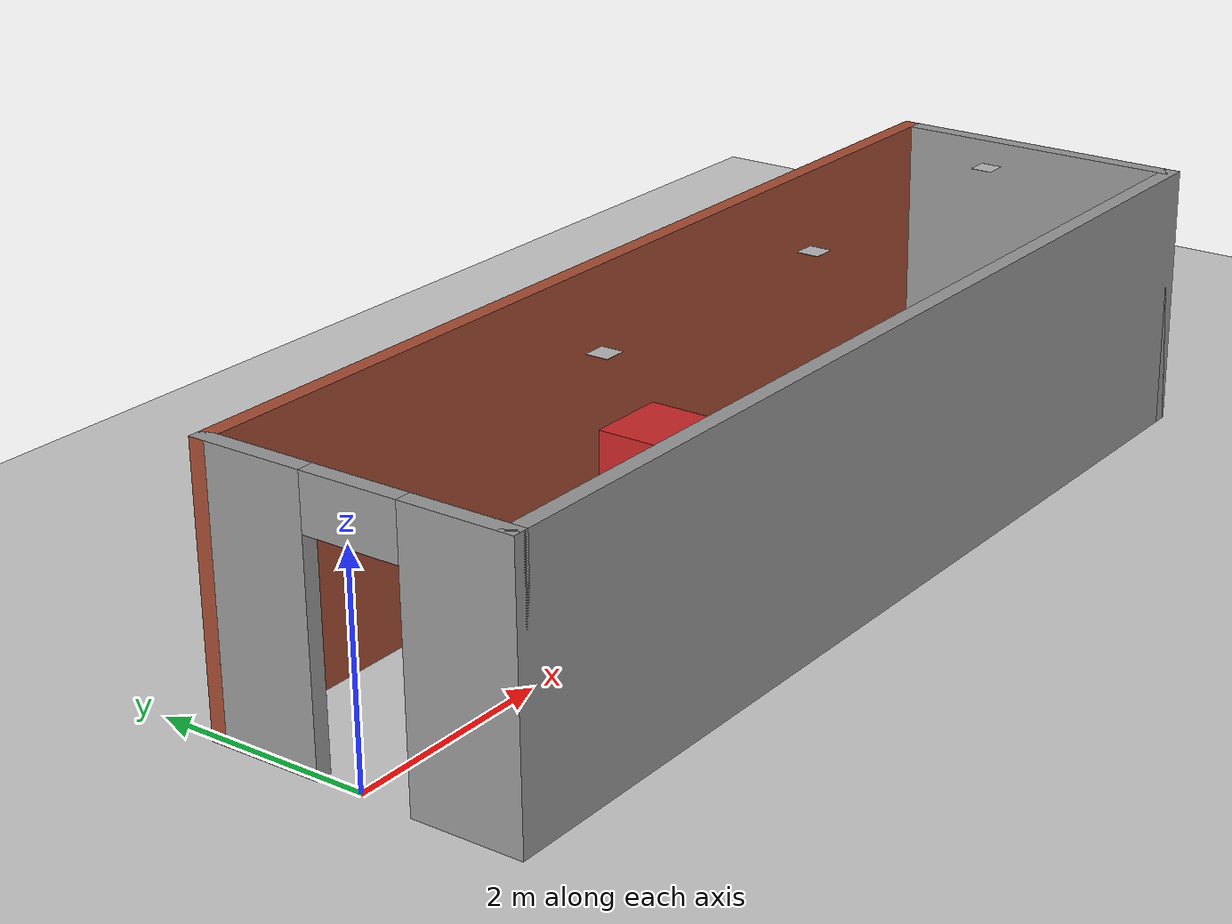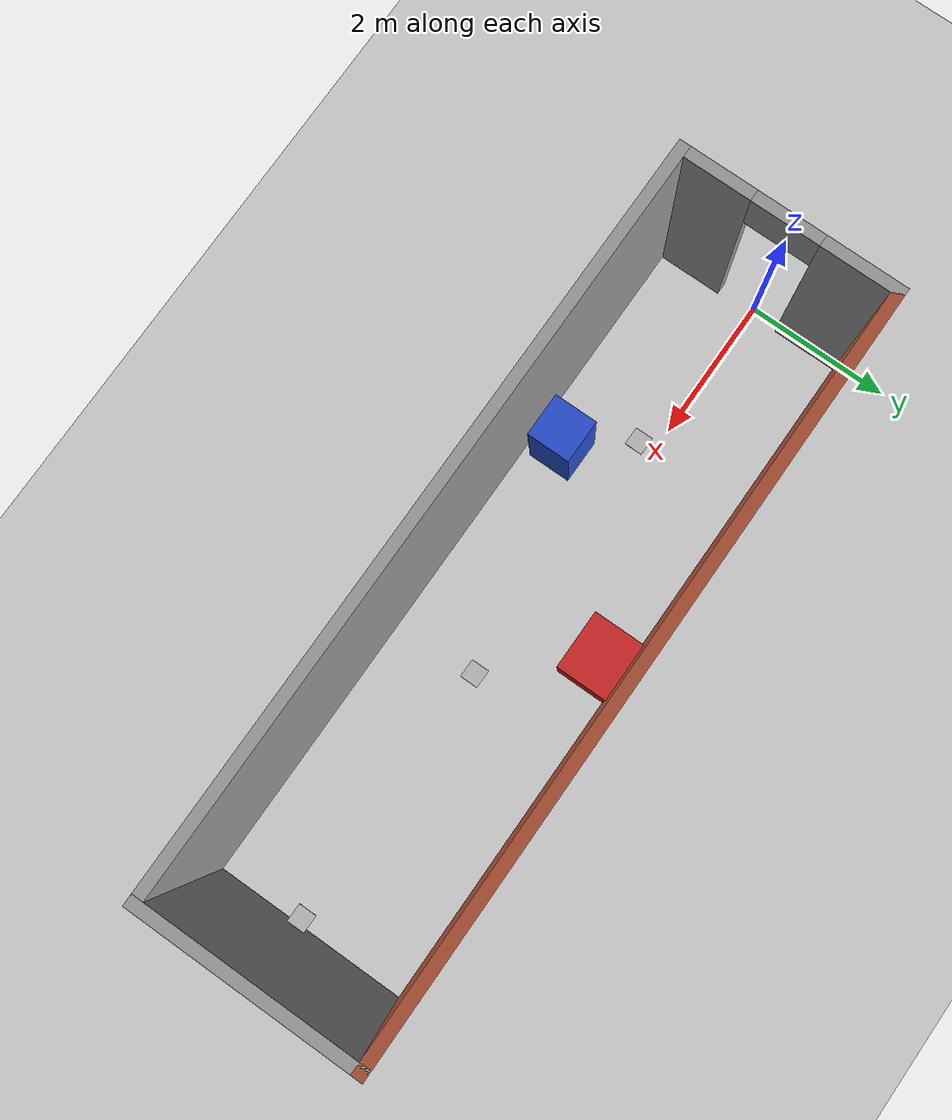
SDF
<sdf version="1.7">
 <world name="default">
  <light name="sun" type="directional">
   <pose>0 0 10 0 -0 0</pose>
   <diffuse>0.8 0.8 0.8 1</diffuse>
   <specular>0.2 0.2 0.2 1</specular>
   <attenuation>
    <range>1000</range>
    <constant>0.9</constant>
    <linear>0.01</linear>
    <quadratic>0.001</quadratic>
   </attenuation>
   <direction>-0.5 0.1 -0.9</direction>
   <spot><inner_angle>0</inner_angle><outer_angle>0</outer_angle><falloff>0</falloff></spot>
  </light>
  <model name="ground_plane">
   <static>1</static>
   <link name="link">
    <collision name="collision">
     <geometry><plane><normal>0 0 1</normal><size>100 100</size></plane></geometry>
     <surface>
      <contact><collide_bitmask>65535</collide_bitmask></contact>
      <friction><ode><mu>100</mu><mu2>50</mu2></ode></friction>
     </surface>
    </collision>
    <visual name="visual">
     <cast_shadows>0</cast_shadows>
     <geometry><plane><normal>0 0 1</normal><size>100 100</size></plane></geometry>
     <material>
      <script><uri>file://media/materials/scripts/gazebo.material</uri><name>Gazebo/Grey</name></script>
     </material>
    </visual>
   </link>
  </model>
  <gravity>0 0 -9.8</gravity>
  <magnetic_field>6e-06 2.3e-05 -4.2e-05</magnetic_field>
  <atmosphere type="adiabatic"/>
  <physics type="ode">
   <max_step_size>0.001</max_step_size>
   <real_time_factor>1</real_time_factor>
   <real_time_update_rate>1000</real_time_update_rate>
  </physics>
  <scene><ambient>0.4 0.4 0.4 1</ambient><background>0.7 0.7 0.7 1</background><shadows>1</shadows></scene>
  <spherical_coordinates>
   <surface_model>EARTH_WGS84</surface_model>
   <latitude_deg>0</latitude_deg>
   <longitude_deg>0</longitude_deg>
   <elevation>0</elevation>
   <heading_deg>0</heading_deg>
  </spherical_coordinates>
  <model name="Mapa_Corredor">
   <pose>4.9387 0.388234 0 0 -0 0</pose>
   <link name="Wall_0">
    <pose>-4.925 -0.4425 0 0 -0 -1.5708</pose>
    <visual name="Wall_0_Visual_0">
     <pose>-0.9675 0 1.25 0 -0 0</pose>
     <geometry><box><size>1.065 0.15 2.5</size></box></geometry>
     <material>
      <script><uri>file://media/materials/scripts/gazebo.material</uri><name>Gazebo/Grey</name></script>
      <ambient>1 1 1 1</ambient>
     </material>
     <meta><layer>0</layer></meta>
    </visual>
    <collision name="Wall_0_Collision_0">
     <geometry><box><size>1.065 0.15 2.5</size></box></geometry>
     <pose>-0.9675 0 1.25 0 -0 0</pose>
    </collision>
    <visual name="Wall_0_Visual_1">
     <pose>0.9825 0 1.25 0 -0 0</pose>
     <geometry><box><size>1.035 0.15 2.5</size></box></geometry>
     <material>
      <script><uri>file://media/materials/scripts/gazebo.material</uri><name>Gazebo/Grey</name></script>
      <ambient>1 1 1 1</ambient>
     </material>
     <meta><layer>0</layer></meta>
    </visual>
    <collision name="Wall_0_Collision_1">
     <geometry><box><size>1.035 0.15 2.5</size></box></geometry>
     <pose>0.9825 0 1.25 0 -0 0</pose>
    </collision>
    <visual name="Wall_0_Visual_2">
     <pose>0.015 0 2.25 0 -0 0</pose>
     <geometry><box><size>0.9 0.15 0.5</size></box></geometry>
     <material>
      <script><uri>file://media/materials/scripts/gazebo.material</uri><name>Gazebo/Grey</name></script>
      <ambient>1 1 1 1</ambient>
     </material>
     <meta><layer>0</layer></meta>
    </visual>
    <collision name="Wall_0_Collision_2">
     <geometry><box><size>0.9 0.15 0.5</size></box></geometry>
     <pose>0.015 0 2.25 0 -0 0</pose>
    </collision>
   </link>
   <link name="Wall_3">
    <collision name="Wall_3_Collision">
     <geometry><box><size>10 0.15 2.5</size></box></geometry>
     <pose>0 0 1.25 0 -0 0</pose>
    </collision>
    <visual name="Wall_3_Visual">
     <pose>0 0 1.25 0 -0 0</pose>
     <geometry><box><size>10 0.15 2.5</size></box></geometry>
     <material>
      <script><uri>file://media/materials/scripts/gazebo.material</uri><name>Gazebo/Grey</name></script>
      <ambient>1 1 1 1</ambient>
     </material>
     <meta><layer>0</layer></meta>
    </visual>
    <pose>0 -1.8675 0 0 -0 0</pose>
   </link>
   <link name="Wall_4">
    <collision name="Wall_4_Collision">
     <geometry><box><size>3 0.15 2.5</size></box></geometry>
     <pose>0 0 1.25 0 -0 0</pose>
    </collision>
    <visual name="Wall_4_Visual">
     <pose>0 0 1.25 0 -0 0</pose>
     <geometry><box><size>3 0.15 2.5</size></box></geometry>
     <material>
      <script><uri>file://media/materials/scripts/gazebo.material</uri><name>Gazebo/Grey</name></script>
      <ambient>1 1 1 1</ambient>
     </material>
     <meta><layer>0</layer></meta>
    </visual>
    <pose>4.925 -0.4425 0 0 -0 1.5708</pose>
   </link>
   <link name="Wall_5">
    <collision name="Wall_5_Collision">
     <geometry><box><size>10 0.15 2.5</size></box></geometry>
     <pose>0 0 1.25 0 -0 0</pose>
    </collision>
    <visual name="Wall_5_Visual">
     <pose>0 0 1.25 0 -0 0</pose>
     <geometry><box><size>10 0.15 2.5</size></box></geometry>
     <material>
      <script><uri>file://media/materials/scripts/gazebo.material</uri><name>Gazebo/Bricks</name></script>
      <ambient>1 1 1 1</ambient>
     </material>
     <meta><layer>0</layer></meta>
    </visual>
    <pose>0 0.9825 0 0 -0 3.14159</pose>
   </link>
   <static>1</static>
  </model>
  <include><uri>model://aruco_tag_0</uri><pose>3.0 0.0 2.5 1.5708 0 0</pose></include>
  <include><uri>model://aruco_tag_1</uri><pose>6.0 0.0 2.5 1.5708 0 0</pose></include>
  <include><uri>model://aruco_tag_2</uri><pose>9.0 0.0 2.5 1.5708 0 0</pose></include>
  <model name="obstaculo_esquerdo_1">
   <pose>3.0 -1.0 0.5 0 0 0</pose>
   <static>true</static>
   <link name="link">
    <collision name="collision"><geometry><box><size>0.6 0.6 1.0</size></box></geometry></collision>
    <visual name="visual">
     <geometry><box><size>0.6 0.6 1.0</size></box></geometry>
     <material>
      <script><uri>file://media/materials/scripts/gazebo.material</uri><name>Gazebo/Blue</name></script>
     </material>
    </visual>
   </link>
  </model>
  <model name="obstaculo_direito_1">
   <pose>5.0 1.0 0.5 0 0 0</pose>
   <static>true</static>
   <link name="link">
    <collision name="collision"><geometry><box><size>0.8 0.8 1.0</size></box></geometry></collision>
    <visual name="visual">
     <geometry><box><size>0.8 0.8 1.0</size></box></geometry>
     <material>
      <script><uri>file://media/materials/scripts/gazebo.material</uri><name>Gazebo/Red</name></script>
     </material>
    </visual>
   </link>
  </model>
 </world>
</sdf>

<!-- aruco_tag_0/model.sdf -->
<sdf version="1.6">
  <model name="aruco_tag_0">
    <static>true</static>
    <link name="link">
      <pose>0 0 0 0 0 0</pose>
      <visual name="visual">
        <geometry>
          <box>
            <size>0.21 0.002 0.21</size>
          </box>
        </geometry>
        <material>
          <script>
            <uri>model://aruco_tag_0/materials/scripts</uri>
            <uri>model://aruco_tag_0/materials/textures</uri>
            <name>aruco/material_0</name>
          </script>
        </material>
      </visual>
    </link>
  </model>
</sdf>

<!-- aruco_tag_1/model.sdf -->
<sdf version="1.6">
  <model name="aruco_tag_1">
    <static>true</static>
    <link name="link">
      <pose>0 0 0 0 0 0</pose>
      <visual name="visual">
        <geometry>
          <box>
            <size>0.21 0.002 0.21</size>
          </box>
        </geometry>
        <material>
          <script>
            <uri>model://aruco_tag_1/materials/scripts</uri>
            <uri>model://aruco_tag_1/materials/textures</uri>
            <name>aruco/material_1</name>
          </script>
        </material>
      </visual>
    </link>
  </model>
</sdf>

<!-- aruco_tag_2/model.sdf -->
<sdf version="1.6">
  <model name="aruco_tag_2">
    <static>true</static>
    <link name="link">
      <pose>0 0 0 0 0 0</pose>
      <visual name="visual">
        <geometry>
          <box>
            <size>0.21 0.002 0.21</size>
          </box>
        </geometry>
        <material>
          <script>
            <uri>model://aruco_tag_2/materials/scripts</uri>
            <uri>model://aruco_tag_2/materials/textures</uri>
            <name>aruco/material_2</name>
          </script>
        </material>
      </visual>
    </link>
  </model>
</sdf>
